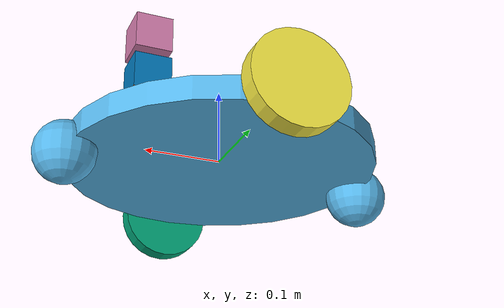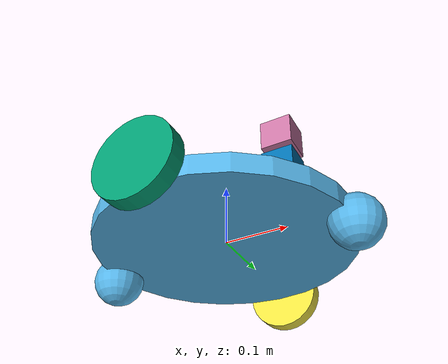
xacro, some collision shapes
<?xml version='1.0'?>

<robot name="udacity_bot" xmlns:xacro="http://www.ros.org/wiki/xacro">
<xacro:include filename="$(find slam_project)/urdf/udacity_bot.gazebo" />

  <link name="robot_footprint"></link>

  <joint name="robot_footprint_joint" type="fixed">
    <origin xyz="0 0 0" rpy="0 0 0" />
    <parent link="robot_footprint"/>
    <child link="chassis" />
  </joint>

  <link name='chassis'>
    <pose>0 0 0.2 0 0 0</pose>

    <inertial>
      <mass value="10.0"/>
      <origin xyz="0.03 0 0" rpy=" 0 0 0"/>
      <inertia
          ixx="0.1" ixy="0" ixz="0"
          iyy="0.1" iyz="0"
          izz="0.1"
      />
    </inertial>

    <collision name='chassis_collision'>
      <origin xyz="0 0 0" rpy=" 0 0 0"/>
      <geometry>
	<cylinder length="0.03" radius="0.2"/>
      </geometry>
    </collision>

    <visual name='chassis_visual'>
     <origin xyz="0 0 0" rpy=" 0 0 0"/>
      <geometry>
	<cylinder length="0.03" radius="0.2"/>
      </geometry>
    </visual>
    <collision name='back_caster_collision'>
     <origin xyz="-0.2 0 -0.02" rpy=" 0 0 0"/>
      <geometry>
        <sphere radius="0.0399"/>
      </geometry>
      <surface>
        <friction>
          <ode>
            <mu>0</mu>
            <mu2>0</mu2>
            <slip1>1.0</slip1>
            <slip2>1.0</slip2>
          </ode>
        </friction>
      </surface>
    </collision>

    <visual name='back_caster_visual'>
     <origin xyz="-0.2 0 -0.02" rpy=" 0 0 0"/>
      <geometry>
        <sphere radius="0.0399"/>
      </geometry>
    </visual>

    <collision name='front_caster_collision'>
     <origin xyz="0.2 0 -0.02" rpy=" 0 0 0"/>
      <geometry>
        <sphere radius="0.0399"/>
      </geometry>
      <surface>
        <friction>
          <ode>
            <mu>0</mu>
            <mu2>0</mu2>
            <slip1>1.0</slip1>
            <slip2>1.0</slip2>
          </ode>
        </friction>
      </surface>
    </collision>

    <visual name='front_caster_visual'>
     <origin xyz="0.2 0 -0.02" rpy=" 0 0 0"/>
      <geometry>
        <sphere radius="0.0399"/>
      </geometry>
    </visual>
  </link>

  <link name="right_wheel">
    <visual>
      <origin xyz="0 0 0" rpy="0 1.5707 1.5707"/>
       <geometry>
        <cylinder length="0.025" radius="0.06"/>
      </geometry>
    </visual>
    <inertial>
      <mass value="3"/>
      <origin xyz="0.0 0 0" rpy=" 0 0 0"/>
      <inertia
          ixx="0.1" ixy="0" ixz="0"
          iyy="0.1" iyz="0"
          izz="0.1"
      />
    </inertial>
	<collision>
      <origin xyz="0 0 0" rpy="0 1.5707 1.5707"/>
       <geometry>
        <cylinder length="0.025" radius="0.06"/>
      </geometry>
    </collision>
  </link>

  <link name="left_wheel">
    <visual>
      <origin xyz="0 0 0" rpy="0 1.5707 1.5707"/>
       <geometry>
        <cylinder length="0.025" radius="0.06"/>
      </geometry>
    </visual>
    <inertial>
      <mass value="3"/>
      <origin xyz="0.0 0 0" rpy=" 0 0 0"/>
      <inertia
          ixx="0.1" ixy="0" ixz="0"
          iyy="0.1" iyz="0"
          izz="0.1"
      />
    </inertial>
    <collision>
      <origin xyz="0 0 0" rpy="0 1.5707 1.5707"/>
       <geometry>
        <cylinder length="0.025" radius="0.06"/>
      </geometry>
    </collision>
  </link>

  <joint type="continuous" name="left_wheel_hinge">
    <origin xyz="0 0.226 0" rpy="0 0 0"/>
    <child link="left_wheel"/>
    <parent link="chassis"/>
    <axis xyz="0 1 0" rpy="0 0 0"/>
    <limit effort="10000" velocity="1000"/>
    <joint_properties damping="1.0" friction="1.0"/>
  </joint>
  <joint type="continuous" name="right_wheel_hinge">
    <origin xyz="0 -0.226 0" rpy="0 0 0"/>
    <child link="right_wheel"/>
    <parent link="chassis"/>
    <axis xyz="0 1 0" rpy="0 0 0"/>
    <limit effort="10000" velocity="1000"/>
    <joint_properties damping="1.0" friction="1.0"/>
  </joint>

  <link name="camera_link">
     <visual>
      <origin xyz="0 0 0" rpy="0 0 0"/>
       <geometry>
        <box size=".05 .05 .05"/>
      </geometry>
    </visual>

    <inertial>
      <mass value="0.1"/>
      <origin xyz="0 0 0" rpy=" 0 0 0"/>
      <inertia
          ixx="0.000001" ixy="0" ixz="0"
          iyy="0.000001" iyz="0"
          izz="0.000001"
      />
    </inertial>

    <collision>
      <origin xyz="0 0 0" rpy="0 0 0"/>
       <geometry>
        <box size=".05 .05 .05"/>
      </geometry>
    </collision>
  </link>

  <joint name="camera_joint" type="fixed">
    <origin xyz="0.1 0 0.1" rpy="0 0 0" />
    <parent link="chassis"/>
    <child link="camera_link"/>
  </joint>

  <link name="camera_rgbd_frame">
     <visual>
      <origin xyz="0 0 0" rpy="0 0 0"/>
       <geometry>
        <box size=".05 .05 .05"/>
      </geometry>
    </visual>
    <inertial>
      <mass value="0.1"/>
      <origin xyz="0 0 0" rpy=" 0 0 0"/>
      <inertia
          ixx="0.000001" ixy="0" ixz="0"
          iyy="0.000001" iyz="0"
          izz="0.000001"
      />
    </inertial>
    <collision>
      <origin xyz="0 0 0" rpy="0 0 0"/>
       <geometry>
        <box size=".05 .05 .05"/>
      </geometry>
    </collision>
  </link>

  <joint name="rgbd_joint" type="fixed">
    <origin xyz="0 0 -0.05" rpy="-1.5707 0  -1.5707" />
    <parent link="camera_link"/>
    <child link="camera_rgbd_frame"/>
  </joint>

  <link name="hokuyo">
     <visual>
      <origin xyz="0 0 0" rpy="0 0 0"/>
       <geometry>
	<mesh filename="package://slam_project/meshes/hokuyo.dae"/>
      </geometry>
    </visual>
    <inertial>
      <mass value="0.1"/>
      <origin xyz="0 0 0" rpy=" 0 0 0"/>
      <inertia
          ixx="0.000001" ixy="0" ixz="0"
          iyy="0.000001" iyz="0"
          izz="0.000001"
      />
    </inertial>
    <collision>
      <origin xyz="0 0 0" rpy="0 0 0"/>
       <geometry>
        <box size=".05 .05 .05"/>
      </geometry>
    </collision>
  </link>

  <joint name="hokuyo_joint" type="fixed">
    <origin xyz=".1 0 .16 " rpy="0 0 0" />
    <parent link="chassis"/>
    <child link="hokuyo"/>
  </joint>
</robot>
